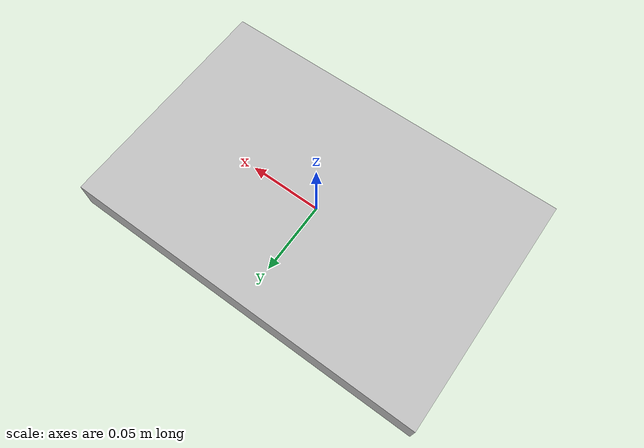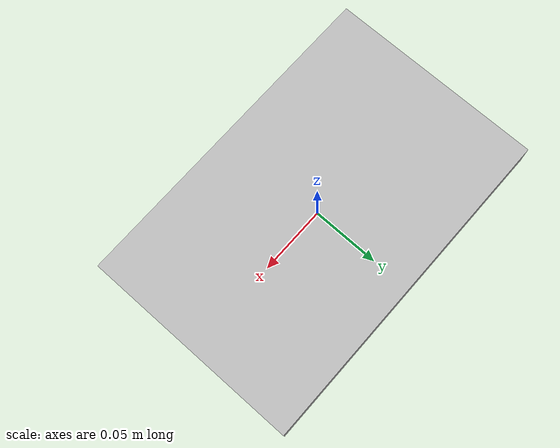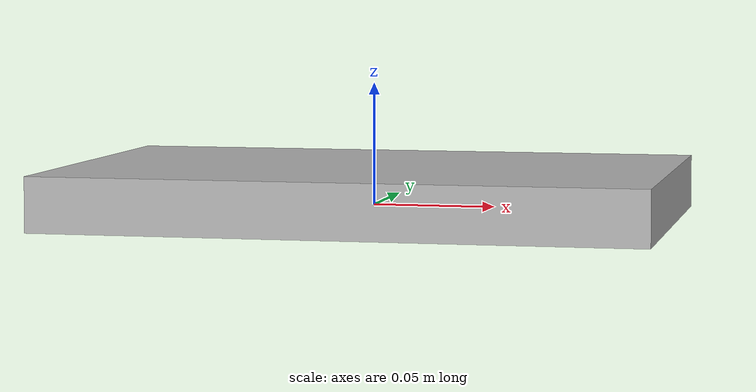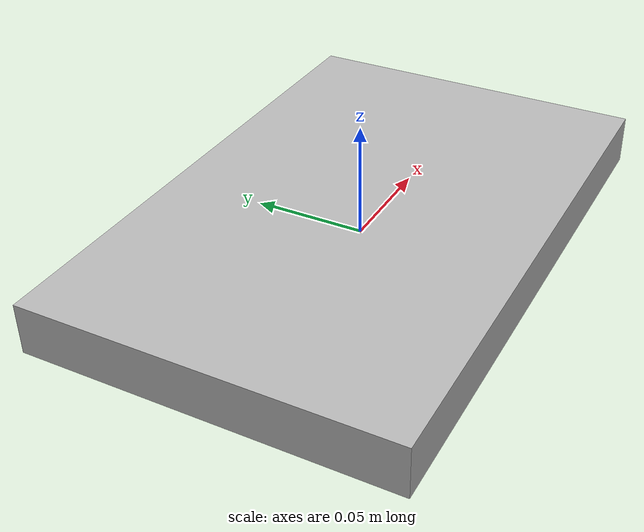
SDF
<?xml version='1.0'?>
<sdf version='1.7'>
  <model name='custom_book'>
    <link name='cover'>
      <pose>0 -0.000108 0.005 0 -0 0</pose>
      <self_collide>0</self_collide>
      <kinematic>0</kinematic>
      <gravity>1</gravity>
      <enable_wind>0</enable_wind>
      <inertial>
        <mass>0.445889</mass>
        <pose>0 0 0 0 -0 0</pose>
        <inertia>
          <ixx>0.000969721</ixx>
          <ixy>0</ixy>
          <ixz>0</ixz>
          <iyy>0.00224886</iyy>
          <iyz>0</iyz>
          <izz>0.0031816</izz>
        </inertia>
      </inertial>
      <visual name='visual'>
        <geometry>
          <box>
            <size>0.245 0.16 0.022308</size>
          </box>
        </geometry>
        <material>
          <script>
            <uri>file:///home/bruno/Downloads/lib_world_models/custom_book/materials/scripts</uri>
            <uri>file:///home/bruno/Downloads/lib_world_models/custom_book/materials/textures</uri>
            <name>custom_book</name>
          </script>
          <shader type='pixel'>
            <normal_map>__default__</normal_map>
          </shader>
        </material>
        <cast_shadows>1</cast_shadows>
        <transparency>0</transparency>
        <pose>0 0 0 0 -0 0</pose>
      </visual>
      <collision name='collision'>
        <laser_retro>0</laser_retro>
        <max_contacts>10</max_contacts>
        <pose>0 0 0 0 -0 0</pose>
        <geometry>
          <box>
            <size>0.245 0.16 0.022308</size>
          </box>
        </geometry>
        <surface>
          <friction>
            <ode>
              <mu>3.5</mu>
              <mu2>3.5</mu2>
              <fdir1>0 0 0</fdir1>
              <slip1>0</slip1>
              <slip2>0</slip2>
            </ode>
            <torsional>
              <coefficient>1</coefficient>
              <patch_radius>0</patch_radius>
              <surface_radius>0</surface_radius>
              <use_patch_radius>1</use_patch_radius>
              <ode>
                <slip>0</slip>
              </ode>
            </torsional>
          </friction>
          <bounce>
            <restitution_coefficient>0</restitution_coefficient>
            <threshold>1e+06</threshold>
          </bounce>
          <contact>
            <collide_without_contact>0</collide_without_contact>
            <collide_without_contact_bitmask>1</collide_without_contact_bitmask>
            <collide_bitmask>1</collide_bitmask>
            <ode>
              <soft_cfm>0</soft_cfm>
              <soft_erp>0.2</soft_erp>
              <kp>1e+13</kp>
              <kd>1</kd>
              <max_vel>0.01</max_vel>
              <min_depth>0</min_depth>
            </ode>
            <bullet>
              <split_impulse>1</split_impulse>
              <split_impulse_penetration_threshold>-0.01</split_impulse_penetration_threshold>
              <soft_cfm>0</soft_cfm>
              <soft_erp>0.2</soft_erp>
              <kp>1e+13</kp>
              <kd>1</kd>
            </bullet>
          </contact>
        </surface>
      </collision>
    </link>
    <static>1</static>
    <allow_auto_disable>1</allow_auto_disable>
  </model>
</sdf>
